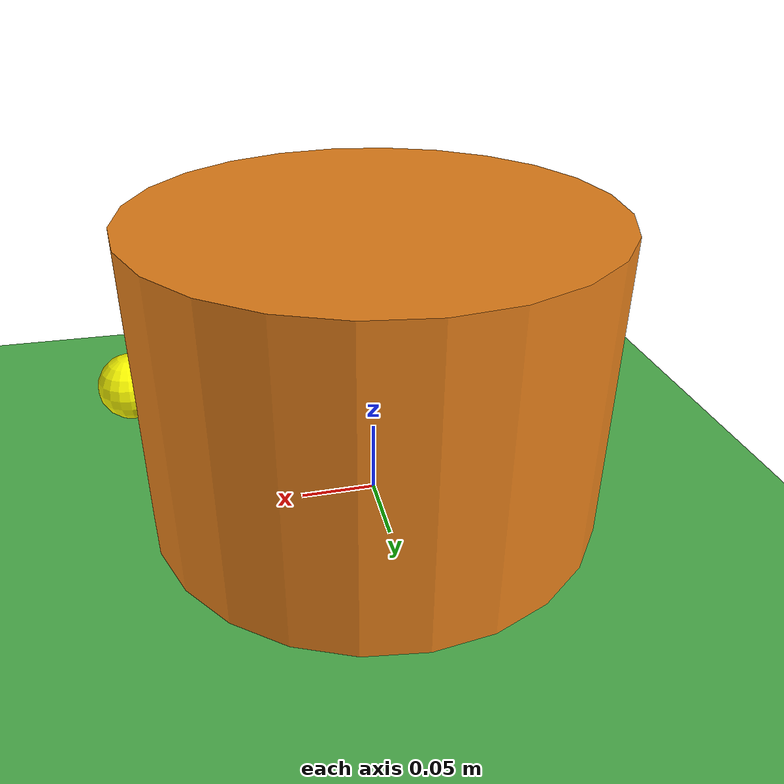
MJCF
<mujoco>
  <compiler autolimits="true"/>

  <asset>
    <!-- 地面棋盘格 -->
    <texture name="grid" type="2d" builtin="checker"
             width="512" height="512"
             rgb1=".1 .2 .3" rgb2=".2 .3 .4"/>
    <material name="grid" texture="grid" texrepeat="8 8" texuniform="true"/>

    <texture name="skybox" type="skybox"
             builtin="gradient"
             width="512" height="512"
             rgb1="0.4 0.6 0.8"
             rgb2="0.1 0.2 0.3"/>
  </asset>

  <default>
    <geom conaffinity="1" contype="1" condim="3" rgba="0.8 0.2 0.2 1"/>
    <joint damping="0.1"/>
  </default>

  <worldbody>
    <geom name="floor" type="plane" size="5 5 0.1"
          rgba="0.3 0.7 0.3 1" material="grid"/>

    <!-- 橙色圆柱体机器人 -->
    <body name="robot" pos="0 0 0.1">
      <joint name="tx" type="slide" axis="1 0 0"/>
      <joint name="ty" type="slide" axis="0 1 0"/>
      <joint name="rz" type="hinge" axis="0 0 1"/>

      <geom name="robot_body" type="cylinder"
            size="0.15 0.1"
            rgba="0.9 0.5 0.1 1"/>

      <site name="robot_front"
            pos="0.15 0 0"
            size="0.02"
            rgba="1 1 0 1"/>
    </body>
  </worldbody>

  <!-- 速度控制器 -->
  <actuator>
    <velocity name="vx" joint="tx" ctrlrange="-1 1" kv="200"/>
    <velocity name="vy" joint="ty" ctrlrange="-1 1" kv="200"/>
    <velocity name="wz" joint="rz" ctrlrange="-2 2" kv="50"/>
  </actuator>
</mujoco>
